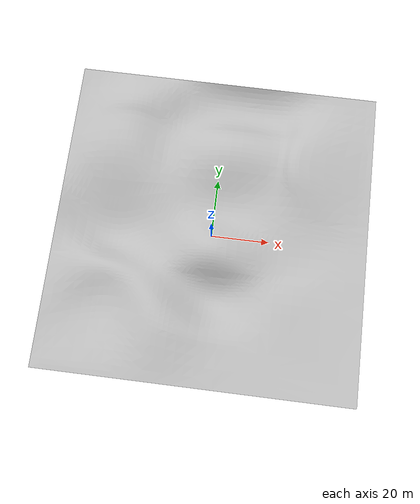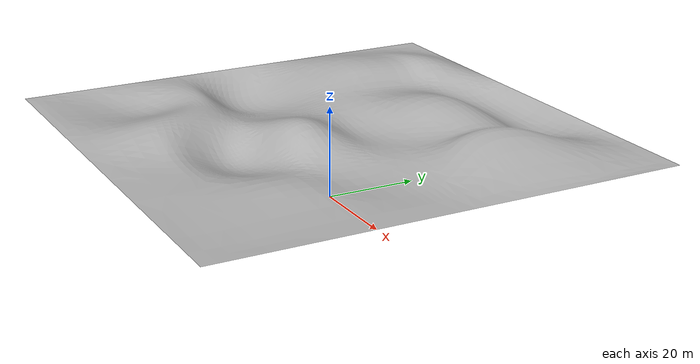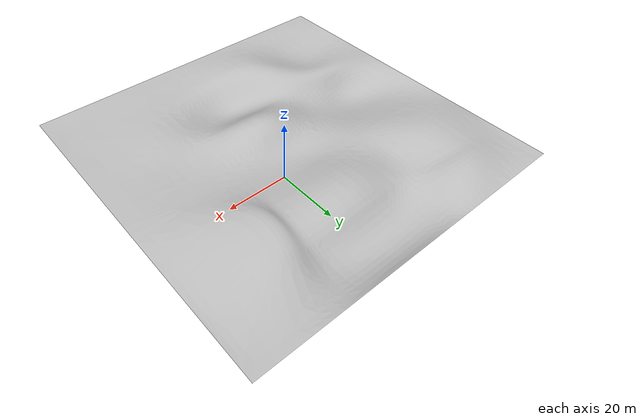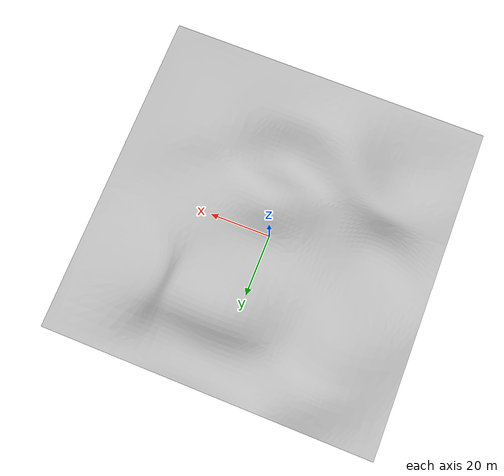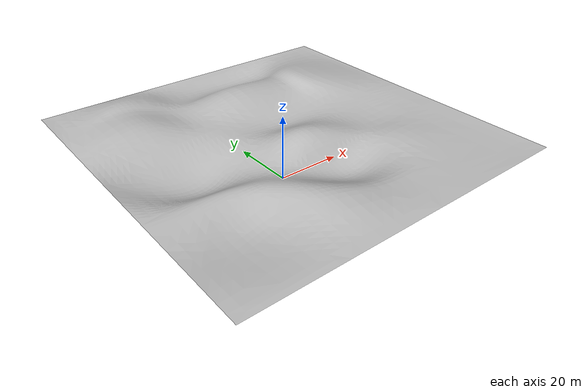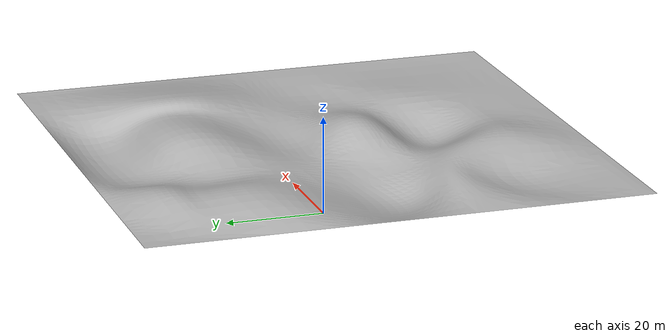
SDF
<?xml version="1.0" ?>
<sdf version="1.4">
  <model name="terrain">
    <pose>-50 50 8 1.57 0 0</pose>
    <static>true</static>
    <link name="link">
      <collision name="collision">
        <geometry>
          <mesh>
            <uri>model://terrain/meshes/terrain.stl</uri>
          </mesh>
        </geometry>
      </collision>
      <visual name="visual">
        <cast_shadows>false</cast_shadows>
        <geometry>
          <mesh>
            <uri>model://terrain/meshes/terrain.stl</uri>
          </mesh>
        </geometry>
        <material>
          <script>
            <uri>model://terrain/materials/scripts</uri>
            <uri>model://terrain/materials/textures</uri>
            <name>vrc/forest</name>
          </script>
        </material>
      </visual>
    </link>
  </model>
</sdf>
